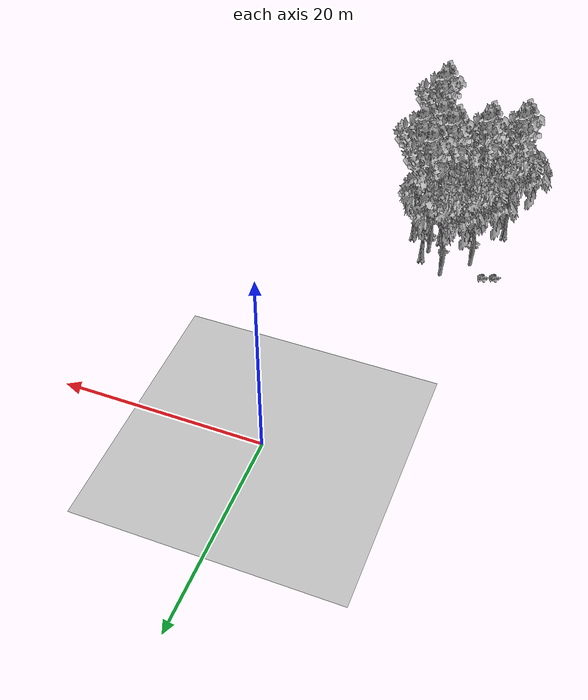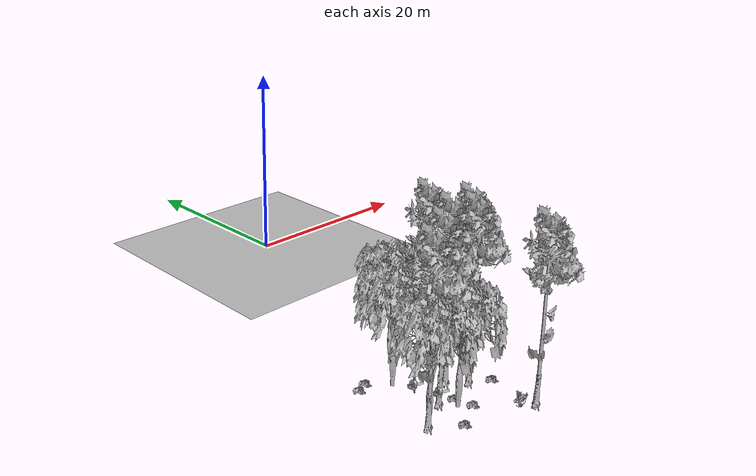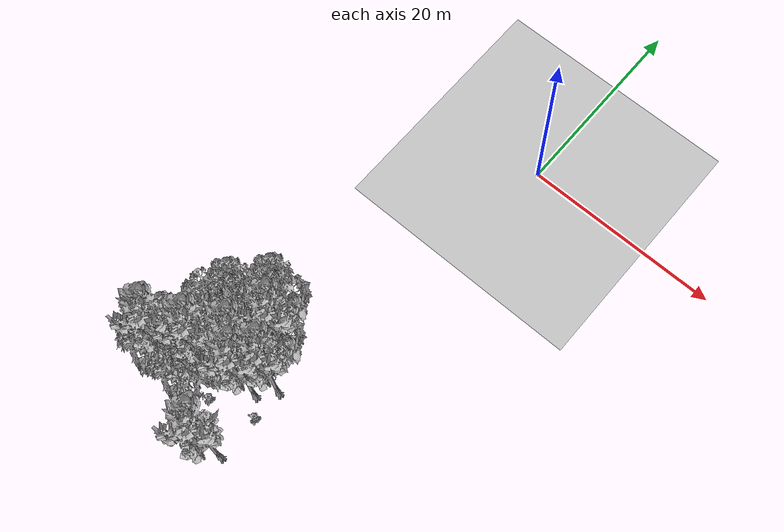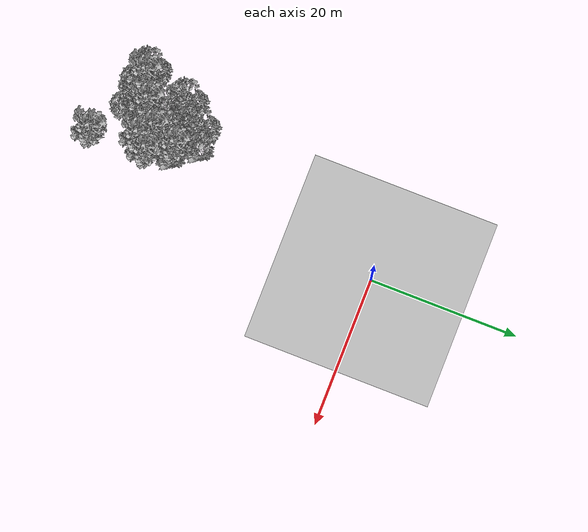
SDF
<sdf version="1.7">
 <world name="default">
  <model name="ground_plane">
   <static>1</static>
   <link name="link">
    <collision name="collision">
     <pose>-50 0 0 0 -0 0</pose>
     <geometry><plane><normal>0 0 1</normal><size>80 80</size></plane></geometry>
     <surface><contact><ode><min_depth>0.01</min_depth><max_vel>0</max_vel></ode></contact></surface>
    </collision>
    <visual name="grass">
     <cast_shadows>0</cast_shadows>
     <geometry>
      <mesh>
       <scale>0.46714285714285714 0.46714285714285714 0.1</scale>
       <uri>file://grass_plane/meshes/grass_plane.dae</uri>
      </mesh>
     </geometry>
    </visual>
   </link>
  </model>
  <model name="Tree 3">
   <static>1</static>
   <pose>-7.1219916832344055 -32.47217001834699 0 1.57079 -0 0</pose>
   <link name="link">
    <collision name="collision">
     <geometry><mesh><scale>3.5 5 3.5</scale><uri>model://tree_9/meshes/tree_9.obj</uri></mesh></geometry>
    </collision>
    <visual name="visual">
     <geometry><mesh><scale>3.5 5 3.5</scale><uri>model://tree_9/meshes/tree_9.obj</uri></mesh></geometry>
    </visual>
   </link>
  </model>
  <model name="Tree 10">
   <static>1</static>
   <pose>-9.611893628563536 -35.80319562311524 0 1.57079 -0 0</pose>
   <link name="link">
    <collision name="collision">
     <geometry><mesh><scale>3.5 5 3.5</scale><uri>model://tree_2/meshes/tree_2.obj</uri></mesh></geometry>
    </collision>
    <visual name="visual">
     <geometry><mesh><scale>3.5 5 3.5</scale><uri>model://tree_2/meshes/tree_2.obj</uri></mesh></geometry>
    </visual>
   </link>
  </model>
  <model name="Tree 97">
   <static>1</static>
   <pose>-6.556375223315108 -30.33182223312526 0 1.57079 -0 0</pose>
   <link name="link">
    <collision name="collision">
     <geometry><mesh><scale>3.5 5 3.5</scale><uri>model://tree_2/meshes/tree_2.obj</uri></mesh></geometry>
    </collision>
    <visual name="visual">
     <geometry><mesh><scale>3.5 5 3.5</scale><uri>model://tree_2/meshes/tree_2.obj</uri></mesh></geometry>
    </visual>
   </link>
  </model>
  <model name="Tree 151">
   <static>1</static>
   <pose>-6.024064904765133 -29.13895680387928 0 1.57079 -0 0</pose>
   <link name="link">
    <collision name="collision">
     <geometry><mesh><scale>3.5 5 3.5</scale><uri>model://tree_9/meshes/tree_9.obj</uri></mesh></geometry>
    </collision>
    <visual name="visual">
     <geometry><mesh><scale>3.5 5 3.5</scale><uri>model://tree_9/meshes/tree_9.obj</uri></mesh></geometry>
    </visual>
   </link>
  </model>
  <model name="Tree 208">
   <static>1</static>
   <pose>-5.571568472998301 -33.810379167411035 0 1.57079 -0 0</pose>
   <link name="link">
    <collision name="collision">
     <geometry><mesh><scale>3.5 5 3.5</scale><uri>model://tree_9/meshes/tree_9.obj</uri></mesh></geometry>
    </collision>
    <visual name="visual">
     <geometry><mesh><scale>3.5 5 3.5</scale><uri>model://tree_9/meshes/tree_9.obj</uri></mesh></geometry>
    </visual>
   </link>
  </model>
  <model name="Tree 289">
   <static>1</static>
   <pose>-13.316168155738819 -35.80265686706163 0 1.57079 -0 0</pose>
   <link name="link">
    <collision name="collision">
     <geometry><mesh><scale>3.5 5 3.5</scale><uri>model://tree_2/meshes/tree_2.obj</uri></mesh></geometry>
    </collision>
    <visual name="visual">
     <geometry><mesh><scale>3.5 5 3.5</scale><uri>model://tree_2/meshes/tree_2.obj</uri></mesh></geometry>
    </visual>
   </link>
  </model>
  <model name="Tree 342">
   <static>1</static>
   <pose>-10.11439721329965 -34.26063814867928 0 1.57079 -0 0</pose>
   <link name="link">
    <collision name="collision">
     <geometry><mesh><scale>3.5 5 3.5</scale><uri>model://tree_9/meshes/tree_9.obj</uri></mesh></geometry>
    </collision>
    <visual name="visual">
     <geometry><mesh><scale>3.5 5 3.5</scale><uri>model://tree_9/meshes/tree_9.obj</uri></mesh></geometry>
    </visual>
   </link>
  </model>
  <model name="Tree 348">
   <static>1</static>
   <pose>-4.182597168618848 -32.24345757815058 0 1.57079 -0 0</pose>
   <link name="link">
    <collision name="collision">
     <geometry><mesh><scale>3.5 5 3.5</scale><uri>model://tree_9/meshes/tree_9.obj</uri></mesh></geometry>
    </collision>
    <visual name="visual">
     <geometry><mesh><scale>3.5 5 3.5</scale><uri>model://tree_9/meshes/tree_9.obj</uri></mesh></geometry>
    </visual>
   </link>
  </model>
  <model name="Tree 440">
   <static>1</static>
   <pose>-4.091284002559355 -39.7480140755905 0 1.57079 -0 0</pose>
   <link name="link">
    <collision name="collision">
     <geometry><mesh><scale>3.5 5 3.5</scale><uri>model://tree_9/meshes/tree_9.obj</uri></mesh></geometry>
    </collision>
    <visual name="visual">
     <geometry><mesh><scale>3.5 5 3.5</scale><uri>model://tree_9/meshes/tree_9.obj</uri></mesh></geometry>
    </visual>
   </link>
  </model>
  <model name="Tree 514">
   <static>1</static>
   <pose>-11.224003379023468 -29.930372400735443 0 1.57079 -0 0</pose>
   <link name="link">
    <collision name="collision">
     <geometry><mesh><scale>3.5 5 3.5</scale><uri>model://tree_2/meshes/tree_2.obj</uri></mesh></geometry>
    </collision>
    <visual name="visual">
     <geometry><mesh><scale>3.5 5 3.5</scale><uri>model://tree_2/meshes/tree_2.obj</uri></mesh></geometry>
    </visual>
   </link>
  </model>
  <model name="Tree 543">
   <static>1</static>
   <pose>-8.70192222615266 -27.302839370696965 0 1.57079 -0 0</pose>
   <link name="link">
    <collision name="collision">
     <geometry><mesh><scale>3.5 5 3.5</scale><uri>model://tree_2/meshes/tree_2.obj</uri></mesh></geometry>
    </collision>
    <visual name="visual">
     <geometry><mesh><scale>3.5 5 3.5</scale><uri>model://tree_2/meshes/tree_2.obj</uri></mesh></geometry>
    </visual>
   </link>
  </model>
  <model name="Tree 633">
   <static>1</static>
   <pose>-13.32066271615858 -35.84585013889023 0 1.57079 -0 0</pose>
   <link name="link">
    <collision name="collision">
     <geometry><mesh><scale>3.5 5 3.5</scale><uri>model://tree_9/meshes/tree_9.obj</uri></mesh></geometry>
    </collision>
    <visual name="visual">
     <geometry><mesh><scale>3.5 5 3.5</scale><uri>model://tree_9/meshes/tree_9.obj</uri></mesh></geometry>
    </visual>
   </link>
  </model>
  <model name="Bush 25">
   <static>1</static>
   <pose>-11.380043455311103 -37.97883734016234 0 1.57079 -0 0</pose>
   <link name="link">
    <collision name="collision">
     <geometry><mesh><scale>2 2 2</scale><uri>model://bush_2/meshes/bush_2.obj</uri></mesh></geometry>
     <surface><contact><collide_without_contact>false</collide_without_contact></contact></surface>
    </collision>
    <visual name="visual">
     <geometry><mesh><scale>2 2 2</scale><uri>model://bush_2/meshes/bush_2.obj</uri></mesh></geometry>
    </visual>
   </link>
  </model>
  <model name="Bush 81">
   <static>1</static>
   <pose>-6.154998875614403 -31.604122523265783 0 1.57079 -0 0</pose>
   <link name="link">
    <collision name="collision">
     <geometry><mesh><scale>2 2 2</scale><uri>model://bush_0/meshes/bush_0.obj</uri></mesh></geometry>
     <surface><contact><collide_without_contact>false</collide_without_contact></contact></surface>
    </collision>
    <visual name="visual">
     <geometry><mesh><scale>2 2 2</scale><uri>model://bush_0/meshes/bush_0.obj</uri></mesh></geometry>
    </visual>
   </link>
  </model>
  <model name="Bush 218">
   <static>1</static>
   <pose>-4.310865322711827 -35.30536111988705 0 1.57079 -0 0</pose>
   <link name="link">
    <collision name="collision">
     <geometry><mesh><scale>2 2 2</scale><uri>model://bush_2/meshes/bush_2.obj</uri></mesh></geometry>
     <surface><contact><collide_without_contact>false</collide_without_contact></contact></surface>
    </collision>
    <visual name="visual">
     <geometry><mesh><scale>2 2 2</scale><uri>model://bush_2/meshes/bush_2.obj</uri></mesh></geometry>
    </visual>
   </link>
  </model>
  <model name="Bush 426">
   <static>1</static>
   <pose>-10.000171778733495 -34.240304715636604 0 1.57079 -0 0</pose>
   <link name="link">
    <collision name="collision">
     <geometry><mesh><scale>2 2 2</scale><uri>model://bush_0/meshes/bush_0.obj</uri></mesh></geometry>
     <surface><contact><collide_without_contact>false</collide_without_contact></contact></surface>
    </collision>
    <visual name="visual">
     <geometry><mesh><scale>2 2 2</scale><uri>model://bush_0/meshes/bush_0.obj</uri></mesh></geometry>
    </visual>
   </link>
  </model>
  <model name="Bush 429">
   <static>1</static>
   <pose>-8.665123551721425 -36.67171264375416 0 1.57079 -0 0</pose>
   <link name="link">
    <collision name="collision">
     <geometry><mesh><scale>2 2 2</scale><uri>model://bush_2/meshes/bush_2.obj</uri></mesh></geometry>
     <surface><contact><collide_without_contact>false</collide_without_contact></contact></surface>
    </collision>
    <visual name="visual">
     <geometry><mesh><scale>2 2 2</scale><uri>model://bush_2/meshes/bush_2.obj</uri></mesh></geometry>
    </visual>
   </link>
  </model>
  <model name="Bush 449">
   <static>1</static>
   <pose>-12.92340821213691 -28.347276834370916 0 1.57079 -0 0</pose>
   <link name="link">
    <collision name="collision">
     <geometry><mesh><scale>2 2 2</scale><uri>model://bush_2/meshes/bush_2.obj</uri></mesh></geometry>
     <surface><contact><collide_without_contact>false</collide_without_contact></contact></surface>
    </collision>
    <visual name="visual">
     <geometry><mesh><scale>2 2 2</scale><uri>model://bush_2/meshes/bush_2.obj</uri></mesh></geometry>
    </visual>
   </link>
  </model>
  <model name="Bush 535">
   <static>1</static>
   <pose>-9.098510463889586 -34.9978291344584 0 1.57079 -0 0</pose>
   <link name="link">
    <collision name="collision">
     <geometry><mesh><scale>2 2 2</scale><uri>model://bush_2/meshes/bush_2.obj</uri></mesh></geometry>
     <surface><contact><collide_without_contact>false</collide_without_contact></contact></surface>
    </collision>
    <visual name="visual">
     <geometry><mesh><scale>2 2 2</scale><uri>model://bush_2/meshes/bush_2.obj</uri></mesh></geometry>
    </visual>
   </link>
  </model>
  <model name="Bush 566">
   <static>1</static>
   <pose>-14.067040075041731 -28.778044724842005 0 1.57079 -0 0</pose>
   <link name="link">
    <collision name="collision">
     <geometry><mesh><scale>2 2 2</scale><uri>model://bush_2/meshes/bush_2.obj</uri></mesh></geometry>
     <surface><contact><collide_without_contact>false</collide_without_contact></contact></surface>
    </collision>
    <visual name="visual">
     <geometry><mesh><scale>2 2 2</scale><uri>model://bush_2/meshes/bush_2.obj</uri></mesh></geometry>
    </visual>
   </link>
  </model>
  <model name="Bush 584">
   <static>1</static>
   <pose>-10.71322060647724 -32.05590246121759 0 1.57079 -0 0</pose>
   <link name="link">
    <collision name="collision">
     <geometry><mesh><scale>2 2 2</scale><uri>model://bush_0/meshes/bush_0.obj</uri></mesh></geometry>
     <surface><contact><collide_without_contact>false</collide_without_contact></contact></surface>
    </collision>
    <visual name="visual">
     <geometry><mesh><scale>2 2 2</scale><uri>model://bush_0/meshes/bush_0.obj</uri></mesh></geometry>
    </visual>
   </link>
  </model>
  <model name="Bush 604">
   <static>1</static>
   <pose>-5.75930091078105 -39.36062704679034 0 1.57079 -0 0</pose>
   <link name="link">
    <collision name="collision">
     <geometry><mesh><scale>2 2 2</scale><uri>model://bush_4/meshes/bush_4.obj</uri></mesh></geometry>
     <surface><contact><collide_without_contact>false</collide_without_contact></contact></surface>
    </collision>
    <visual name="visual">
     <geometry><mesh><scale>2 2 2</scale><uri>model://bush_4/meshes/bush_4.obj</uri></mesh></geometry>
    </visual>
   </link>
  </model>
  <model name="Bush 634">
   <static>1</static>
   <pose>-7.979321161007441 -30.873307932408302 0 1.57079 -0 0</pose>
   <link name="link">
    <collision name="collision">
     <geometry><mesh><scale>2 2 2</scale><uri>model://bush_2/meshes/bush_2.obj</uri></mesh></geometry>
     <surface><contact><collide_without_contact>false</collide_without_contact></contact></surface>
    </collision>
    <visual name="visual">
     <geometry><mesh><scale>2 2 2</scale><uri>model://bush_2/meshes/bush_2.obj</uri></mesh></geometry>
    </visual>
   </link>
  </model>
 </world>
</sdf>
